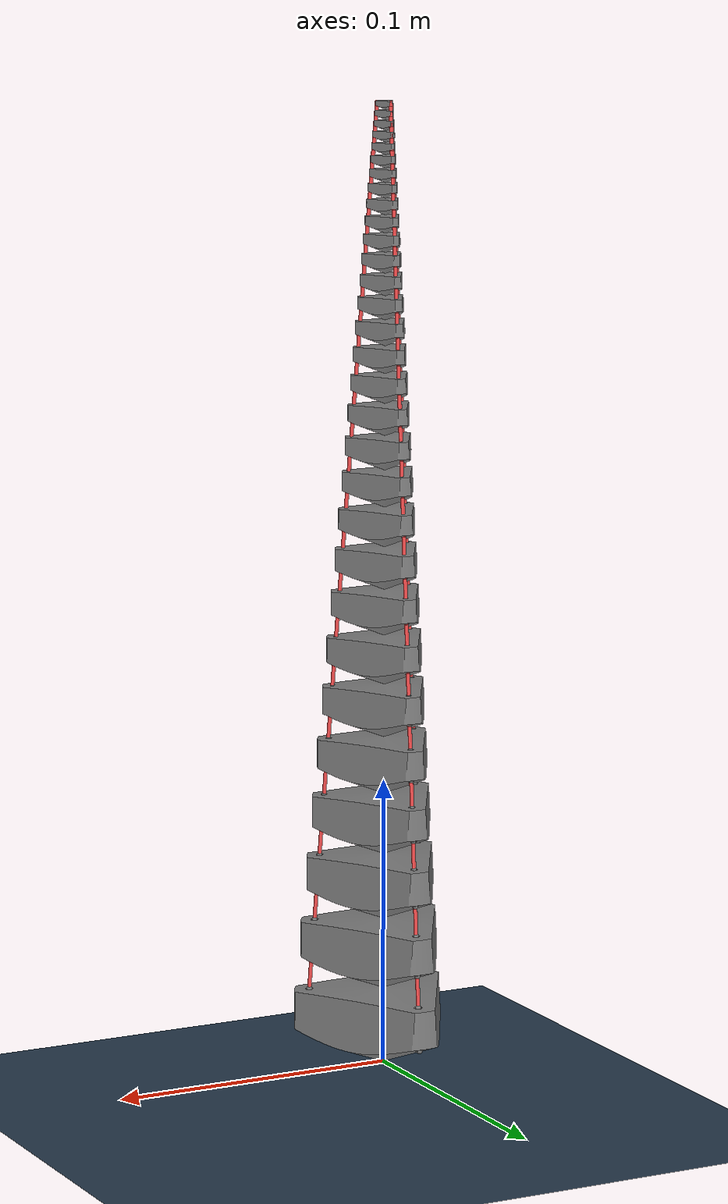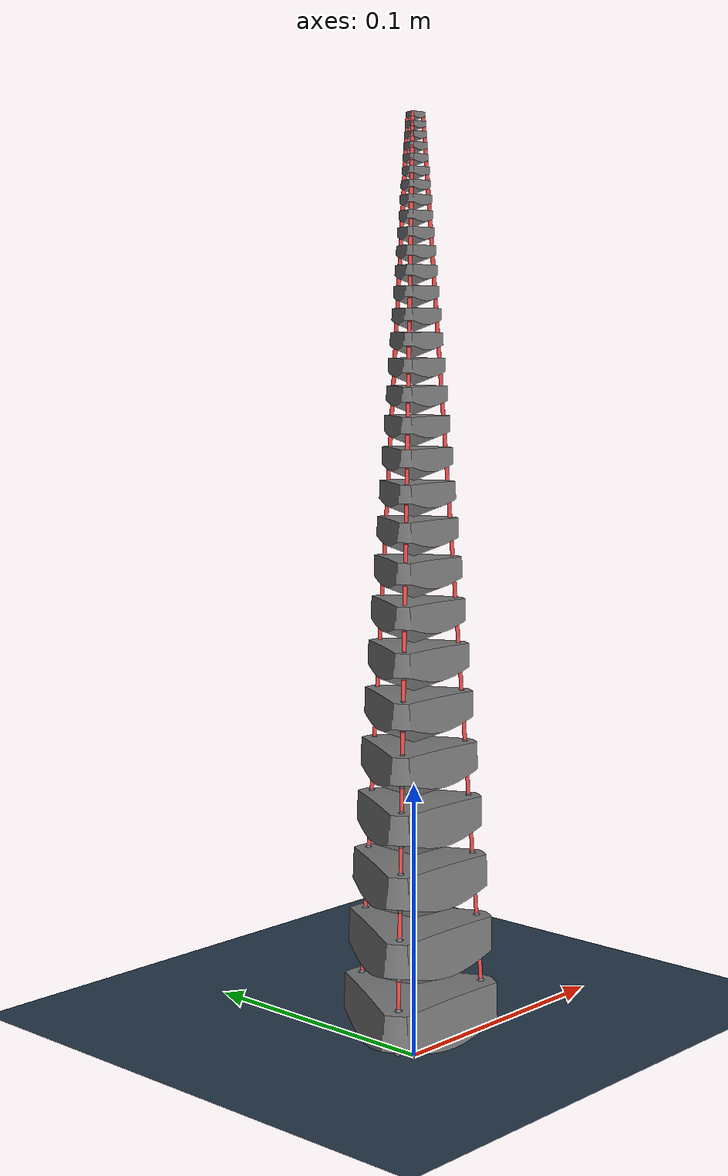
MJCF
<mujoco model="spiral_robot">
  <compiler angle="radian"/>
  <option gravity="0 0 0"/>
  <asset>
    <mesh name="baselink_1" file="baselink.stl" scale="0.001000000 0.001000000 0.001000000"/>
    <mesh name="baselink_2" file="baselink.stl" scale="0.000928540 0.000928540 0.000928540"/>
    <mesh name="baselink_3" file="baselink.stl" scale="0.000862187 0.000862187 0.000862187"/>
    <mesh name="baselink_4" file="baselink.stl" scale="0.000800575 0.000800575 0.000800575"/>
    <mesh name="baselink_5" file="baselink.stl" scale="0.000743366 0.000743366 0.000743366"/>
    <mesh name="baselink_6" file="baselink.stl" scale="0.000690246 0.000690246 0.000690246"/>
    <mesh name="baselink_7" file="baselink.stl" scale="0.000640921 0.000640921 0.000640921"/>
    <mesh name="baselink_8" file="baselink.stl" scale="0.000595121 0.000595121 0.000595121"/>
    <mesh name="baselink_9" file="baselink.stl" scale="0.000552593 0.000552593 0.000552593"/>
    <mesh name="baselink_10" file="baselink.stl" scale="0.000513105 0.000513105 0.000513105"/>
    <mesh name="baselink_11" file="baselink.stl" scale="0.000476439 0.000476439 0.000476439"/>
    <mesh name="baselink_12" file="baselink.stl" scale="0.000442393 0.000442393 0.000442393"/>
    <mesh name="baselink_13" file="baselink.stl" scale="0.000410779 0.000410779 0.000410779"/>
    <mesh name="baselink_14" file="baselink.stl" scale="0.000381425 0.000381425 0.000381425"/>
    <mesh name="baselink_15" file="baselink.stl" scale="0.000354169 0.000354169 0.000354169"/>
    <mesh name="baselink_16" file="baselink.stl" scale="0.000328860 0.000328860 0.000328860"/>
    <mesh name="baselink_17" file="baselink.stl" scale="0.000305360 0.000305360 0.000305360"/>
    <mesh name="baselink_18" file="baselink.stl" scale="0.000283539 0.000283539 0.000283539"/>
    <mesh name="baselink_19" file="baselink.stl" scale="0.000263277 0.000263277 0.000263277"/>
    <mesh name="baselink_20" file="baselink.stl" scale="0.000244463 0.000244463 0.000244463"/>
    <mesh name="baselink_21" file="baselink.stl" scale="0.000226994 0.000226994 0.000226994"/>
    <mesh name="baselink_22" file="baselink.stl" scale="0.000210773 0.000210773 0.000210773"/>
    <mesh name="baselink_23" file="baselink.stl" scale="0.000195711 0.000195711 0.000195711"/>
    <mesh name="baselink_24" file="baselink.stl" scale="0.000181726 0.000181726 0.000181726"/>
    <mesh name="baselink_25" file="baselink.stl" scale="0.000168740 0.000168740 0.000168740"/>
    <mesh name="baselink_26" file="baselink.stl" scale="0.000156682 0.000156682 0.000156682"/>
    <mesh name="baselink_27" file="baselink.stl" scale="0.000145485 0.000145485 0.000145485"/>
    <mesh name="baselink_28" file="baselink.stl" scale="0.000135089 0.000135089 0.000135089"/>
    <mesh name="baselink_29" file="baselink.stl" scale="0.000125435 0.000125435 0.000125435"/>
    <mesh name="baselink_30" file="baselink.stl" scale="0.000116472 0.000116472 0.000116472"/>
    <texture name="texplane" type="2d" builtin="checker" rgb1=".2 .3 .4" rgb2=".1 0.15 0.2" width="512" height="512" mark="cross" markrgb=".8 .8 .8"/>
    <material name="matplane" reflectance="0.3" texture="texplane" texrepeat="1 1" texuniform="true"/>
  </asset>
  <worldbody>
    <geom name="ground" type="plane" size="10 10 1" pos="0 0 0" quat="1 0 0 0" material="matplane" condim="1"/>
    <light pos="1 0.5 0.7" dir="-1 -0.5 -1" directional="true" castshadow="false" diffuse="1 1 1" specular="0.3 0.3 0.3"/>
    <body name="link1" pos="0 0 0.000000000">
      <geom type="mesh" mesh="baselink_1"/>
      <site name="s1_1" pos="0.000000000 0.026743856 0.010744829" size="0.001000 0.001000 0.001000"/>
      <site name="s1_2" pos="0.000000000 0.025584803 0.025669747" size="0.001000 0.001000 0.001000"/>
      <site name="s1_3" pos="-0.023160859 -0.013371928 0.010744829" size="0.001000 0.001000 0.001000"/>
      <site name="s1_4" pos="-0.022157089 -0.012792402 0.025669747" size="0.001000 0.001000 0.001000"/>
      <site name="s1_5" pos="0.023160859 -0.013371928 0.010744829" size="0.001000 0.001000 0.001000"/>
      <site name="s1_6" pos="0.022157089 -0.012792402 0.025669747" size="0.001000 0.001000 0.001000"/>
      <body name="link2" pos="0 0 0.026612956">
        <joint type="ball" stiffness="100.000000" damping="20.000000"/>
        <geom type="mesh" mesh="baselink_2"/>
        <site name="s2_1" pos="0.000000000 0.024832746 0.009977006" size="0.000929 0.000929 0.000929"/>
        <site name="s2_2" pos="0.000000000 0.023756519 0.023835392" size="0.000929 0.000929 0.000929"/>
        <site name="s2_3" pos="-0.021505789 -0.012416373 0.009977006" size="0.000929 0.000929 0.000929"/>
        <site name="s2_4" pos="-0.020573749 -0.011878259 0.023835392" size="0.000929 0.000929 0.000929"/>
        <site name="s2_5" pos="0.021505789 -0.012416373 0.009977006" size="0.000929 0.000929 0.000929"/>
        <site name="s2_6" pos="0.020573749 -0.011878259 0.023835392" size="0.000929 0.000929 0.000929"/>
      <body name="link3" pos="0 0 0.024711200">
        <joint type="ball" stiffness="86.218693" damping="18.570804"/>
        <geom type="mesh" mesh="baselink_3"/>
        <site name="s3_1" pos="0.000000000 0.023058203 0.009264051" size="0.000862 0.000862 0.000862"/>
        <site name="s3_2" pos="0.000000000 0.022058883 0.022132120" size="0.000862 0.000862 0.000862"/>
        <site name="s3_3" pos="-0.019968990 -0.011529102 0.009264051" size="0.000862 0.000862 0.000862"/>
        <site name="s3_4" pos="-0.019103553 -0.011029441 0.022132120" size="0.000862 0.000862 0.000862"/>
        <site name="s3_5" pos="0.019968990 -0.011529102 0.009264051" size="0.000862 0.000862 0.000862"/>
        <site name="s3_6" pos="0.019103553 -0.011029441 0.022132120" size="0.000862 0.000862 0.000862"/>
      <body name="link4" pos="0 0 0.022945343">
        <joint type="ball" stiffness="74.336631" damping="17.243739"/>
        <geom type="mesh" mesh="baselink_4"/>
        <site name="s4_1" pos="0.000000000 0.021410469 0.008602044" size="0.000801 0.000801 0.000801"/>
        <site name="s4_2" pos="0.000000000 0.020482560 0.020550564" size="0.000801 0.000801 0.000801"/>
        <site name="s4_3" pos="-0.018542010 -0.010705234 0.008602044" size="0.000801 0.000801 0.000801"/>
        <site name="s4_4" pos="-0.017738417 -0.010241280 0.020550564" size="0.000801 0.000801 0.000801"/>
        <site name="s4_5" pos="0.018542010 -0.010705234 0.008602044" size="0.000801 0.000801 0.000801"/>
        <site name="s4_6" pos="0.017738417 -0.010241280 0.020550564" size="0.000801 0.000801 0.000801"/>
      <body name="link5" pos="0 0 0.021305674">
        <joint type="ball" stiffness="64.092071" damping="16.011505"/>
        <geom type="mesh" mesh="baselink_5"/>
        <site name="s5_1" pos="0.000000000 0.019880481 0.007987344" size="0.000743 0.000743 0.000743"/>
        <site name="s5_2" pos="0.000000000 0.019018881 0.019082025" size="0.000743 0.000743 0.000743"/>
        <site name="s5_3" pos="-0.017217002 -0.009940241 0.007987344" size="0.000743 0.000743 0.000743"/>
        <site name="s5_4" pos="-0.016470834 -0.009509440 0.019082025" size="0.000743 0.000743 0.000743"/>
        <site name="s5_5" pos="0.017217002 -0.009940241 0.007987344" size="0.000743 0.000743 0.000743"/>
        <site name="s5_6" pos="0.016470834 -0.009509440 0.019082025" size="0.000743 0.000743 0.000743"/>
      <body name="link6" pos="0 0 0.019783175">
        <joint type="ball" stiffness="55.259346" damping="14.867326"/>
        <geom type="mesh" mesh="baselink_6"/>
        <site name="s6_1" pos="0.000000000 0.018459827 0.007416570" size="0.000690 0.000690 0.000690"/>
        <site name="s6_2" pos="0.000000000 0.017659795 0.017718427" size="0.000690 0.000690 0.000690"/>
        <site name="s6_3" pos="-0.015986679 -0.009229913 0.007416570" size="0.000690 0.000690 0.000690"/>
        <site name="s6_4" pos="-0.015293831 -0.008829898 0.017718427" size="0.000690 0.000690 0.000690"/>
        <site name="s6_5" pos="0.015986679 -0.009229913 0.007416570" size="0.000690 0.000690 0.000690"/>
        <site name="s6_6" pos="0.015293831 -0.008829898 0.017718427" size="0.000690 0.000690 0.000690"/>
      <body name="link7" pos="0 0 0.018369474">
        <joint type="ball" stiffness="47.643886" damping="13.804910"/>
        <geom type="mesh" mesh="baselink_7"/>
        <site name="s7_1" pos="0.000000000 0.017140691 0.006886583" size="0.000641 0.000641 0.000641"/>
        <site name="s7_2" pos="0.000000000 0.016397830 0.016452272" size="0.000641 0.000641 0.000641"/>
        <site name="s7_3" pos="-0.014844274 -0.008570346 0.006886583" size="0.000641 0.000641 0.000641"/>
        <site name="s7_4" pos="-0.014200938 -0.008198915 0.016452272" size="0.000641 0.000641 0.000641"/>
        <site name="s7_5" pos="0.014844274 -0.008570346 0.006886583" size="0.000641 0.000641 0.000641"/>
        <site name="s7_6" pos="0.014200938 -0.008198915 0.016452272" size="0.000641 0.000641 0.000641"/>
      <body name="link8" pos="0 0 0.017056795">
        <joint type="ball" stiffness="41.077936" damping="12.818414"/>
        <geom type="mesh" mesh="baselink_8"/>
        <site name="s8_1" pos="0.000000000 0.015915821 0.006394470" size="0.000595 0.000595 0.000595"/>
        <site name="s8_2" pos="0.000000000 0.015226045 0.015276597" size="0.000595 0.000595 0.000595"/>
        <site name="s8_3" pos="-0.013783506 -0.007957911 0.006394470" size="0.000595 0.000595 0.000595"/>
        <site name="s8_4" pos="-0.013186142 -0.007613022 0.015276597" size="0.000595 0.000595 0.000595"/>
        <site name="s8_5" pos="0.013783506 -0.007957911 0.006394470" size="0.000595 0.000595 0.000595"/>
        <site name="s8_6" pos="0.013186142 -0.007613022 0.015276597" size="0.000595 0.000595 0.000595"/>
      <body name="link9" pos="0 0 0.015837920">
        <joint type="ball" stiffness="35.416860" damping="11.902413"/>
        <geom type="mesh" mesh="baselink_9"/>
        <site name="s9_1" pos="0.000000000 0.014778480 0.005937522" size="0.000553 0.000553 0.000553"/>
        <site name="s9_2" pos="0.000000000 0.014137995 0.014184934" size="0.000553 0.000553 0.000553"/>
        <site name="s9_3" pos="-0.012798539 -0.007389240 0.005937522" size="0.000553 0.000553 0.000553"/>
        <site name="s9_4" pos="-0.012243863 -0.007068997 0.014184934" size="0.000553 0.000553 0.000553"/>
        <site name="s9_5" pos="0.012798539 -0.007389240 0.005937522" size="0.000553 0.000553 0.000553"/>
        <site name="s9_6" pos="0.012243863 -0.007068997 0.014184934" size="0.000553 0.000553 0.000553"/>
      <body name="link10" pos="0 0 0.014706146">
        <joint type="ball" stiffness="30.535954" damping="11.051869"/>
        <geom type="mesh" mesh="baselink_10"/>
        <site name="s10_1" pos="0.000000000 0.013722413 0.005513228" size="0.000513 0.000513 0.000513"/>
        <site name="s10_2" pos="0.000000000 0.013127697 0.013171282" size="0.000513 0.000513 0.000513"/>
        <site name="s10_3" pos="-0.011883958 -0.006861207 0.005513228" size="0.000513 0.000513 0.000513"/>
        <site name="s10_4" pos="-0.011368919 -0.006563848 0.013171282" size="0.000513 0.000513 0.000513"/>
        <site name="s10_5" pos="0.011883958 -0.006861207 0.005513228" size="0.000513 0.000513 0.000513"/>
        <site name="s10_6" pos="0.011368919 -0.006563848 0.013171282" size="0.000513 0.000513 0.000513"/>
      <body name="link11" pos="0 0 0.013655248">
        <joint type="ball" stiffness="26.327700" damping="10.262105"/>
        <geom type="mesh" mesh="baselink_11"/>
        <site name="s11_1" pos="0.000000000 0.012741812 0.005119254" size="0.000476 0.000476 0.000476"/>
        <site name="s11_2" pos="0.000000000 0.012189595 0.012230065" size="0.000476 0.000476 0.000476"/>
        <site name="s11_3" pos="-0.011034733 -0.006370906 0.005119254" size="0.000476 0.000476 0.000476"/>
        <site name="s11_4" pos="-0.010556499 -0.006094797 0.012230065" size="0.000476 0.000476 0.000476"/>
        <site name="s11_5" pos="0.011034733 -0.006370906 0.005119254" size="0.000476 0.000476 0.000476"/>
        <site name="s11_6" pos="0.010556499 -0.006094797 0.012230065" size="0.000476 0.000476 0.000476"/>
      <body name="link12" pos="0 0 0.012679447">
        <joint type="ball" stiffness="22.699399" damping="9.528777"/>
        <geom type="mesh" mesh="baselink_12"/>
        <site name="s12_1" pos="0.000000000 0.011831285 0.004753433" size="0.000442 0.000442 0.000442"/>
        <site name="s12_2" pos="0.000000000 0.011318529 0.011356107" size="0.000442 0.000442 0.000442"/>
        <site name="s12_3" pos="-0.010246194 -0.005915643 0.004753433" size="0.000442 0.000442 0.000442"/>
        <site name="s12_4" pos="-0.009802133 -0.005659264 0.011356107" size="0.000442 0.000442 0.000442"/>
        <site name="s12_5" pos="0.010246194 -0.005915643 0.004753433" size="0.000442 0.000442 0.000442"/>
        <site name="s12_6" pos="0.009802133 -0.005659264 0.011356107" size="0.000442 0.000442 0.000442"/>
      <body name="link13" pos="0 0 0.011773376">
        <joint type="ball" stiffness="19.571125" damping="8.847853"/>
        <geom type="mesh" mesh="baselink_13"/>
        <site name="s13_1" pos="0.000000000 0.010985824 0.004413754" size="0.000411 0.000411 0.000411"/>
        <site name="s13_2" pos="0.000000000 0.010509709 0.010544602" size="0.000411 0.000411 0.000411"/>
        <site name="s13_3" pos="-0.009514003 -0.005492912 0.004413754" size="0.000411 0.000411 0.000411"/>
        <site name="s13_4" pos="-0.009101675 -0.005254855 0.010544602" size="0.000411 0.000411 0.000411"/>
        <site name="s13_5" pos="0.009514003 -0.005492912 0.004413754" size="0.000411 0.000411 0.000411"/>
        <site name="s13_6" pos="0.009101675 -0.005254855 0.010544602" size="0.000411 0.000411 0.000411"/>
      <body name="link14" pos="0 0 0.010932053">
        <joint type="ball" stiffness="16.873968" damping="8.215587"/>
        <geom type="mesh" mesh="baselink_14"/>
        <site name="s14_1" pos="0.000000000 0.010200780 0.004098348" size="0.000381 0.000381 0.000381"/>
        <site name="s14_2" pos="0.000000000 0.009758688 0.009791087" size="0.000381 0.000381 0.000381"/>
        <site name="s14_3" pos="-0.008834134 -0.005100390 0.004098348" size="0.000381 0.000381 0.000381"/>
        <site name="s14_4" pos="-0.008451271 -0.004879344 0.009791087" size="0.000381 0.000381 0.000381"/>
        <site name="s14_5" pos="0.008834134 -0.005100390 0.004098348" size="0.000381 0.000381 0.000381"/>
        <site name="s14_6" pos="0.008451271 -0.004879344 0.009791087" size="0.000381 0.000381 0.000381"/>
      <body name="link15" pos="0 0 0.010150851">
        <joint type="ball" stiffness="14.548515" damping="7.628503"/>
        <geom type="mesh" mesh="baselink_15"/>
        <site name="s15_1" pos="0.000000000 0.009471834 0.003805481" size="0.000354 0.000354 0.000354"/>
        <site name="s15_2" pos="0.000000000 0.009061334 0.009091418" size="0.000354 0.000354 0.000354"/>
        <site name="s15_3" pos="-0.008202849 -0.004735917 0.003805481" size="0.000354 0.000354 0.000354"/>
        <site name="s15_4" pos="-0.007847345 -0.004530667 0.009091418" size="0.000354 0.000354 0.000354"/>
        <site name="s15_5" pos="0.008202849 -0.004735917 0.003805481" size="0.000354 0.000354 0.000354"/>
        <site name="s15_6" pos="0.007847345 -0.004530667 0.009091418" size="0.000354 0.000354 0.000354"/>
      <body name="link16" pos="0 0 0.009425473">
        <joint type="ball" stiffness="12.543540" damping="7.083372"/>
        <geom type="mesh" mesh="baselink_16"/>
        <site name="s16_1" pos="0.000000000 0.008794979 0.003533542" size="0.000329 0.000329 0.000329"/>
        <site name="s16_2" pos="0.000000000 0.008413813 0.008441747" size="0.000329 0.000329 0.000329"/>
        <site name="s16_3" pos="-0.007616675 -0.004397489 0.003533542" size="0.000329 0.000329 0.000329"/>
        <site name="s16_4" pos="-0.007286576 -0.004206906 0.008441747" size="0.000329 0.000329 0.000329"/>
        <site name="s16_5" pos="0.007616675 -0.004397489 0.003533542" size="0.000329 0.000329 0.000329"/>
        <site name="s16_6" pos="0.007286576 -0.004206906 0.008441747" size="0.000329 0.000329 0.000329"/>
      <body name="link17" pos="0 0 0.008751931">
        <joint type="ball" stiffness="10.814876" damping="6.577196"/>
        <geom type="mesh" mesh="baselink_17"/>
        <site name="s17_1" pos="0.000000000 0.008166492 0.003281036" size="0.000305 0.000305 0.000305"/>
        <site name="s17_2" pos="0.000000000 0.007812564 0.007838502" size="0.000305 0.000305 0.000305"/>
        <site name="s17_3" pos="-0.007072389 -0.004083246 0.003281036" size="0.000305 0.000305 0.000305"/>
        <site name="s17_4" pos="-0.006765879 -0.003906282 0.007838502" size="0.000305 0.000305 0.000305"/>
        <site name="s17_5" pos="0.007072389 -0.004083246 0.003281036" size="0.000305 0.000305 0.000305"/>
        <site name="s17_6" pos="0.006765879 -0.003906282 0.007838502" size="0.000305 0.000305 0.000305"/>
      <body name="link18" pos="0 0 0.008126520">
        <joint type="ball" stiffness="9.324445" damping="6.107191"/>
        <geom type="mesh" mesh="baselink_18"/>
        <site name="s18_1" pos="0.000000000 0.007582916 0.003046574" size="0.000284 0.000284 0.000284"/>
        <site name="s18_2" pos="0.000000000 0.007254280 0.007278364" size="0.000284 0.000284 0.000284"/>
        <site name="s18_3" pos="-0.006566998 -0.003791458 0.003046574" size="0.000284 0.000284 0.000284"/>
        <site name="s18_4" pos="-0.006282390 -0.003627140 0.007278364" size="0.000284 0.000284 0.000284"/>
        <site name="s18_5" pos="0.006566998 -0.003791458 0.003046574" size="0.000284 0.000284 0.000284"/>
        <site name="s18_6" pos="0.006282390 -0.003627140 0.007278364" size="0.000284 0.000284 0.000284"/>
      <body name="link19" pos="0 0 0.007545801">
        <joint type="ball" stiffness="8.039414" damping="5.670772"/>
        <geom type="mesh" mesh="baselink_19"/>
        <site name="s19_1" pos="0.000000000 0.007041042 0.002828866" size="0.000263 0.000263 0.000263"/>
        <site name="s19_2" pos="0.000000000 0.006735890 0.006758254" size="0.000263 0.000263 0.000263"/>
        <site name="s19_3" pos="-0.006097721 -0.003520521 0.002828866" size="0.000263 0.000263 0.000263"/>
        <site name="s19_4" pos="-0.005833452 -0.003367945 0.006758254" size="0.000263 0.000263 0.000263"/>
        <site name="s19_5" pos="0.006097721 -0.003520521 0.002828866" size="0.000263 0.000263 0.000263"/>
        <site name="s19_6" pos="0.005833452 -0.003367945 0.006758254" size="0.000263 0.000263 0.000263"/>
      <body name="link20" pos="0 0 0.007006579">
        <joint type="ball" stiffness="6.931478" damping="5.265540"/>
        <geom type="mesh" mesh="baselink_20"/>
        <site name="s20_1" pos="0.000000000 0.006537891 0.002626716" size="0.000244 0.000244 0.000244"/>
        <site name="s20_2" pos="0.000000000 0.006254545 0.006275311" size="0.000244 0.000244 0.000244"/>
        <site name="s20_3" pos="-0.005661980 -0.003268945 0.002626716" size="0.000244 0.000244 0.000244"/>
        <site name="s20_4" pos="-0.005416595 -0.003127272 0.006275311" size="0.000244 0.000244 0.000244"/>
        <site name="s20_5" pos="0.005661980 -0.003268945 0.002626716" size="0.000244 0.000244 0.000244"/>
        <site name="s20_6" pos="0.005416595 -0.003127272 0.006275311" size="0.000244 0.000244 0.000244"/>
      <body name="link21" pos="0 0 0.006505891">
        <joint type="ball" stiffness="5.976230" damping="4.889266"/>
        <geom type="mesh" mesh="baselink_21"/>
        <site name="s21_1" pos="0.000000000 0.006070695 0.002439012" size="0.000227 0.000227 0.000227"/>
        <site name="s21_2" pos="0.000000000 0.005807597 0.005826878" size="0.000227 0.000227 0.000227"/>
        <site name="s21_3" pos="-0.005257376 -0.003035347 0.002439012" size="0.000227 0.000227 0.000227"/>
        <site name="s21_4" pos="-0.005029526 -0.002903798 0.005826878" size="0.000227 0.000227 0.000227"/>
        <site name="s21_5" pos="0.005257376 -0.003035347 0.002439012" size="0.000227 0.000227 0.000227"/>
        <site name="s21_6" pos="0.005029526 -0.002903798 0.005826878" size="0.000227 0.000227 0.000227"/>
      <body name="link22" pos="0 0 0.006040981">
        <joint type="ball" stiffness="5.152627" damping="4.539880"/>
        <geom type="mesh" mesh="baselink_22"/>
        <site name="s22_1" pos="0.000000000 0.005636884 0.002264720" size="0.000211 0.000211 0.000211"/>
        <site name="s22_2" pos="0.000000000 0.005392587 0.005410491" size="0.000211 0.000211 0.000211"/>
        <site name="s22_3" pos="-0.004881685 -0.002818442 0.002264720" size="0.000211 0.000211 0.000211"/>
        <site name="s22_4" pos="-0.004670117 -0.002696293 0.005410491" size="0.000211 0.000211 0.000211"/>
        <site name="s22_5" pos="0.004881685 -0.002818442 0.002264720" size="0.000211 0.000211 0.000211"/>
        <site name="s22_6" pos="0.004670117 -0.002696293 0.005410491" size="0.000211 0.000211 0.000211"/>
      <body name="link23" pos="0 0 0.005609294">
        <joint type="ball" stiffness="4.442528" damping="4.215461"/>
        <geom type="mesh" mesh="baselink_23"/>
        <site name="s23_1" pos="0.000000000 0.005234074 0.002102884" size="0.000196 0.000196 0.000196"/>
        <site name="s23_2" pos="0.000000000 0.005007234 0.005023858" size="0.000196 0.000196 0.000196"/>
        <site name="s23_3" pos="-0.004532841 -0.002617037 0.002102884" size="0.000196 0.000196 0.000196"/>
        <site name="s23_4" pos="-0.004336392 -0.002503617 0.005023858" size="0.000196 0.000196 0.000196"/>
        <site name="s23_5" pos="0.004532841 -0.002617037 0.002102884" size="0.000196 0.000196 0.000196"/>
        <site name="s23_6" pos="0.004336392 -0.002503617 0.005023858" size="0.000196 0.000196 0.000196"/>
      <body name="link24" pos="0 0 0.005208455">
        <joint type="ball" stiffness="3.830289" damping="3.914225"/>
        <geom type="mesh" mesh="baselink_24"/>
        <site name="s24_1" pos="0.000000000 0.004860048 0.001952612" size="0.000182 0.000182 0.000182"/>
        <site name="s24_2" pos="0.000000000 0.004649418 0.004664854" size="0.000182 0.000182 0.000182"/>
        <site name="s24_3" pos="-0.004208925 -0.002430024 0.001952612" size="0.000182 0.000182 0.000182"/>
        <site name="s24_4" pos="-0.004026514 -0.002324709 0.004664854" size="0.000182 0.000182 0.000182"/>
        <site name="s24_5" pos="0.004208925 -0.002430024 0.001952612" size="0.000182 0.000182 0.000182"/>
        <site name="s24_6" pos="0.004026514 -0.002324709 0.004664854" size="0.000182 0.000182 0.000182"/>
      <body name="link25" pos="0 0 0.004836260">
        <joint type="ball" stiffness="3.302426" damping="3.634515"/>
        <geom type="mesh" mesh="baselink_25"/>
        <site name="s25_1" pos="0.000000000 0.004512750 0.001813079" size="0.000169 0.000169 0.000169"/>
        <site name="s25_2" pos="0.000000000 0.004317172 0.004331505" size="0.000169 0.000169 0.000169"/>
        <site name="s25_3" pos="-0.003908156 -0.002256375 0.001813079" size="0.000169 0.000169 0.000169"/>
        <site name="s25_4" pos="-0.003738780 -0.002158586 0.004331505" size="0.000169 0.000169 0.000169"/>
        <site name="s25_5" pos="0.003908156 -0.002256375 0.001813079" size="0.000169 0.000169 0.000169"/>
        <site name="s25_6" pos="0.003738780 -0.002158586 0.004331505" size="0.000169 0.000169 0.000169"/>
      <body name="link26" pos="0 0 0.004490662">
        <joint type="ball" stiffness="2.847308" damping="3.374794"/>
        <geom type="mesh" mesh="baselink_26"/>
        <site name="s26_1" pos="0.000000000 0.004190270 0.001683517" size="0.000157 0.000157 0.000157"/>
        <site name="s26_2" pos="0.000000000 0.004008667 0.004021977" size="0.000157 0.000157 0.000157"/>
        <site name="s26_3" pos="-0.003628880 -0.002095135 0.001683517" size="0.000157 0.000157 0.000157"/>
        <site name="s26_4" pos="-0.003471608 -0.002004334 0.004021977" size="0.000157 0.000157 0.000157"/>
        <site name="s26_5" pos="0.003628880 -0.002095135 0.001683517" size="0.000157 0.000157 0.000157"/>
        <site name="s26_6" pos="0.003471608 -0.002004334 0.004021977" size="0.000157 0.000157 0.000157"/>
      <body name="link27" pos="0 0 0.004169760">
        <joint type="ball" stiffness="2.454912" damping="3.133632"/>
        <geom type="mesh" mesh="baselink_27"/>
        <site name="s27_1" pos="0.000000000 0.003890834 0.001563213" size="0.000145 0.000145 0.000145"/>
        <site name="s27_2" pos="0.000000000 0.003722209 0.003734567" size="0.000145 0.000145 0.000145"/>
        <site name="s27_3" pos="-0.003369561 -0.001945417 0.001563213" size="0.000145 0.000145 0.000145"/>
        <site name="s27_4" pos="-0.003223527 -0.001861104 0.003734567" size="0.000145 0.000145 0.000145"/>
        <site name="s27_5" pos="0.003369561 -0.001945417 0.001563213" size="0.000145 0.000145 0.000145"/>
        <site name="s27_6" pos="0.003223527 -0.001861104 0.003734567" size="0.000145 0.000145 0.000145"/>
      <body name="link28" pos="0 0 0.003871790">
        <joint type="ball" stiffness="2.116593" damping="2.909703"/>
        <geom type="mesh" mesh="baselink_28"/>
        <site name="s28_1" pos="0.000000000 0.003612796 0.001451506" size="0.000135 0.000135 0.000135"/>
        <site name="s28_2" pos="0.000000000 0.003456221 0.003467696" size="0.000135 0.000135 0.000135"/>
        <site name="s28_3" pos="-0.003128773 -0.001806398 0.001451506" size="0.000135 0.000135 0.000135"/>
        <site name="s28_4" pos="-0.002993175 -0.001728110 0.003467696" size="0.000135 0.000135 0.000135"/>
        <site name="s28_5" pos="0.003128773 -0.001806398 0.001451506" size="0.000135 0.000135 0.000135"/>
        <site name="s28_6" pos="0.002993175 -0.001728110 0.003467696" size="0.000135 0.000135 0.000135"/>
      <body name="link29" pos="0 0 0.003595113">
        <joint type="ball" stiffness="1.824899" damping="2.701776"/>
        <geom type="mesh" mesh="baselink_29"/>
        <site name="s29_1" pos="0.000000000 0.003354626 0.001347782" size="0.000125 0.000125 0.000125"/>
        <site name="s29_2" pos="0.000000000 0.003209240 0.003219895" size="0.000125 0.000125 0.000125"/>
        <site name="s29_3" pos="-0.002905191 -0.001677313 0.001347782" size="0.000125 0.000125 0.000125"/>
        <site name="s29_4" pos="-0.002779283 -0.001604620 0.003219895" size="0.000125 0.000125 0.000125"/>
        <site name="s29_5" pos="0.002905191 -0.001677313 0.001347782" size="0.000125 0.000125 0.000125"/>
        <site name="s29_6" pos="0.002779283 -0.001604620 0.003219895" size="0.000125 0.000125 0.000125"/>
      <body name="link30" pos="0 0 0.003338207">
        <joint type="ball" stiffness="1.573404" damping="2.508708"/>
        <geom type="mesh" mesh="baselink_30"/>
        <site name="s30_1" pos="0.000000000 0.003114905 0.001251470" size="0.000116 0.000116 0.000116"/>
        <site name="s30_2" pos="0.000000000 0.002979908 0.002989802" size="0.000116 0.000116 0.000116"/>
        <site name="s30_3" pos="-0.002697587 -0.001557453 0.001251470" size="0.000116 0.000116 0.000116"/>
        <site name="s30_4" pos="-0.002580676 -0.001489954 0.002989802" size="0.000116 0.000116 0.000116"/>
        <site name="s30_5" pos="0.002697587 -0.001557453 0.001251470" size="0.000116 0.000116 0.000116"/>
        <site name="s30_6" pos="0.002580676 -0.001489954 0.002989802" size="0.000116 0.000116 0.000116"/>
      </body>
      </body>
      </body>
      </body>
      </body>
      </body>
      </body>
      </body>
      </body>
      </body>
      </body>
      </body>
      </body>
      </body>
      </body>
      </body>
      </body>
      </body>
      </body>
      </body>
      </body>
      </body>
      </body>
      </body>
      </body>
      </body>
      </body>
      </body>
      </body>
    </body>
  </worldbody>
  <tendon>
    <spatial name="tendon1" width="0.0007" frictionloss="0.1" rgba=".95 .3 .3 1" limited="true" range="0.096650399 0.966503989">
      <site site="s1_1"/>
      <site site="s1_2"/>
      <site site="s2_1"/>
      <site site="s2_2"/>
      <site site="s3_1"/>
      <site site="s3_2"/>
      <site site="s4_1"/>
      <site site="s4_2"/>
      <site site="s5_1"/>
      <site site="s5_2"/>
      <site site="s6_1"/>
      <site site="s6_2"/>
      <site site="s7_1"/>
      <site site="s7_2"/>
      <site site="s8_1"/>
      <site site="s8_2"/>
      <site site="s9_1"/>
      <site site="s9_2"/>
      <site site="s10_1"/>
      <site site="s10_2"/>
      <site site="s11_1"/>
      <site site="s11_2"/>
      <site site="s12_1"/>
      <site site="s12_2"/>
      <site site="s13_1"/>
      <site site="s13_2"/>
      <site site="s14_1"/>
      <site site="s14_2"/>
      <site site="s15_1"/>
      <site site="s15_2"/>
      <site site="s16_1"/>
      <site site="s16_2"/>
      <site site="s17_1"/>
      <site site="s17_2"/>
      <site site="s18_1"/>
      <site site="s18_2"/>
      <site site="s19_1"/>
      <site site="s19_2"/>
      <site site="s20_1"/>
      <site site="s20_2"/>
      <site site="s21_1"/>
      <site site="s21_2"/>
      <site site="s22_1"/>
      <site site="s22_2"/>
      <site site="s23_1"/>
      <site site="s23_2"/>
      <site site="s24_1"/>
      <site site="s24_2"/>
      <site site="s25_1"/>
      <site site="s25_2"/>
      <site site="s26_1"/>
      <site site="s26_2"/>
      <site site="s27_1"/>
      <site site="s27_2"/>
      <site site="s28_1"/>
      <site site="s28_2"/>
      <site site="s29_1"/>
      <site site="s29_2"/>
      <site site="s30_1"/>
      <site site="s30_2"/>
    </spatial>
    <spatial name="tendon2" width="0.0007" frictionloss="0.1" rgba=".95 .3 .3 1" limited="true" range="0.096650399 0.966503989">
      <site site="s1_3"/>
      <site site="s1_4"/>
      <site site="s2_3"/>
      <site site="s2_4"/>
      <site site="s3_3"/>
      <site site="s3_4"/>
      <site site="s4_3"/>
      <site site="s4_4"/>
      <site site="s5_3"/>
      <site site="s5_4"/>
      <site site="s6_3"/>
      <site site="s6_4"/>
      <site site="s7_3"/>
      <site site="s7_4"/>
      <site site="s8_3"/>
      <site site="s8_4"/>
      <site site="s9_3"/>
      <site site="s9_4"/>
      <site site="s10_3"/>
      <site site="s10_4"/>
      <site site="s11_3"/>
      <site site="s11_4"/>
      <site site="s12_3"/>
      <site site="s12_4"/>
      <site site="s13_3"/>
      <site site="s13_4"/>
      <site site="s14_3"/>
      <site site="s14_4"/>
      <site site="s15_3"/>
      <site site="s15_4"/>
      <site site="s16_3"/>
      <site site="s16_4"/>
      <site site="s17_3"/>
      <site site="s17_4"/>
      <site site="s18_3"/>
      <site site="s18_4"/>
      <site site="s19_3"/>
      <site site="s19_4"/>
      <site site="s20_3"/>
      <site site="s20_4"/>
      <site site="s21_3"/>
      <site site="s21_4"/>
      <site site="s22_3"/>
      <site site="s22_4"/>
      <site site="s23_3"/>
      <site site="s23_4"/>
      <site site="s24_3"/>
      <site site="s24_4"/>
      <site site="s25_3"/>
      <site site="s25_4"/>
      <site site="s26_3"/>
      <site site="s26_4"/>
      <site site="s27_3"/>
      <site site="s27_4"/>
      <site site="s28_3"/>
      <site site="s28_4"/>
      <site site="s29_3"/>
      <site site="s29_4"/>
      <site site="s30_3"/>
      <site site="s30_4"/>
    </spatial>
    <spatial name="tendon3" width="0.0007" frictionloss="0.1" rgba=".95 .3 .3 1" limited="true" range="0.096650399 0.966503989">
      <site site="s1_5"/>
      <site site="s1_6"/>
      <site site="s2_5"/>
      <site site="s2_6"/>
      <site site="s3_5"/>
      <site site="s3_6"/>
      <site site="s4_5"/>
      <site site="s4_6"/>
      <site site="s5_5"/>
      <site site="s5_6"/>
      <site site="s6_5"/>
      <site site="s6_6"/>
      <site site="s7_5"/>
      <site site="s7_6"/>
      <site site="s8_5"/>
      <site site="s8_6"/>
      <site site="s9_5"/>
      <site site="s9_6"/>
      <site site="s10_5"/>
      <site site="s10_6"/>
      <site site="s11_5"/>
      <site site="s11_6"/>
      <site site="s12_5"/>
      <site site="s12_6"/>
      <site site="s13_5"/>
      <site site="s13_6"/>
      <site site="s14_5"/>
      <site site="s14_6"/>
      <site site="s15_5"/>
      <site site="s15_6"/>
      <site site="s16_5"/>
      <site site="s16_6"/>
      <site site="s17_5"/>
      <site site="s17_6"/>
      <site site="s18_5"/>
      <site site="s18_6"/>
      <site site="s19_5"/>
      <site site="s19_6"/>
      <site site="s20_5"/>
      <site site="s20_6"/>
      <site site="s21_5"/>
      <site site="s21_6"/>
      <site site="s22_5"/>
      <site site="s22_6"/>
      <site site="s23_5"/>
      <site site="s23_6"/>
      <site site="s24_5"/>
      <site site="s24_6"/>
      <site site="s25_5"/>
      <site site="s25_6"/>
      <site site="s26_5"/>
      <site site="s26_6"/>
      <site site="s27_5"/>
      <site site="s27_6"/>
      <site site="s28_5"/>
      <site site="s28_6"/>
      <site site="s29_5"/>
      <site site="s29_6"/>
      <site site="s30_5"/>
      <site site="s30_6"/>
    </spatial>
  </tendon>
  <actuator>
    <motor name="act1" tendon="tendon1" ctrllimited="true" ctrlrange="-1 1" gear="50"/>
    <motor name="act2" tendon="tendon2" ctrllimited="true" ctrlrange="-1 1" gear="50"/>
    <motor name="act3" tendon="tendon3" ctrllimited="true" ctrlrange="-1 1" gear="50"/>
  </actuator>
</mujoco>
